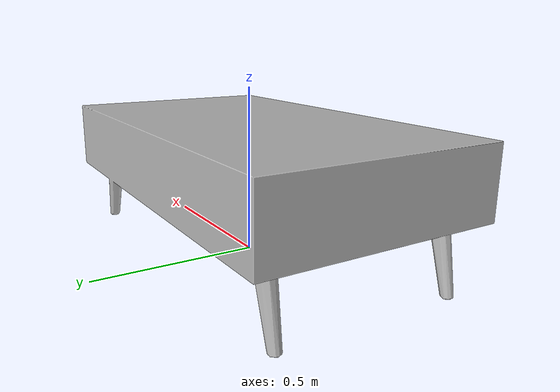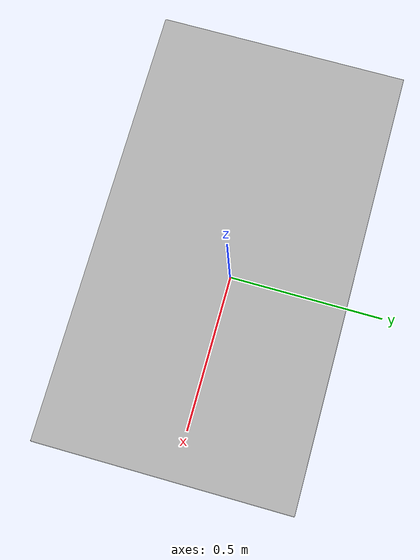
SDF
<sdf version="1.6">
	<model name="CoffeeTables_O73b15e86a72b_lod0">
		<link name="main_link">
			<visual name="visual_RootNode">
				<geometry>
					<mesh>
						<uri>model://CoffeeTables_O73b15e86a72b_lod0/meshes/visual_RootNode.dae</uri>
					</mesh>
				</geometry>
			</visual>
			<collision name="collision_RootNode_lod0_0">
				<geometry>
					<mesh>
						<uri>model://CoffeeTables_O73b15e86a72b_lod0/meshes/collision_RootNode_lod0_0.dae</uri>
					</mesh>
				</geometry>
			</collision>
		</link>
	</model>
</sdf>
